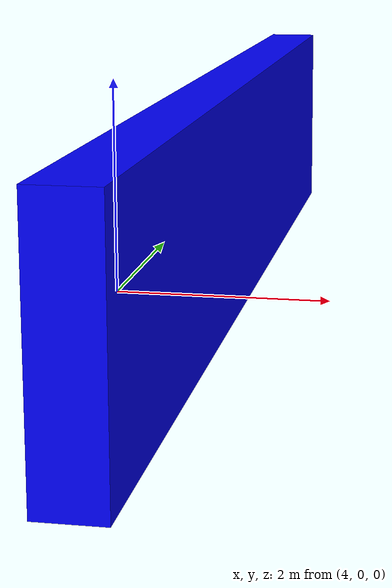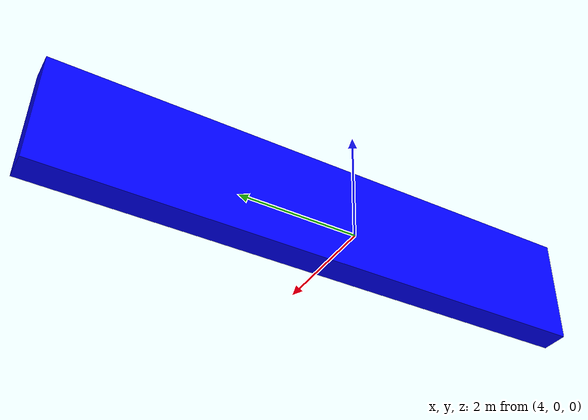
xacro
<?xml version="1.0"?>
<robot xmlns:xacro="http://www.ros.org/wiki/xacro">

  <link name="wall">
    <visual>
      <origin xyz="5 0 1" rpy="0 0 0"/>
      <geometry>
        <box size="0.5 10.0 2.0"/>
      </geometry>
      <material name="blue">
        <color rgba="0.0 0.0 1.0 1"/>
      </material>
    </visual>

    <collision>
      <origin xyz="5 0 1" rpy="0 0 0"/>
      <geometry>
        <box size="0.5 10.0 2.0"/>
      </geometry>
    </collision>

    <inertial>
      <mass value="1.0"/>
      <inertia ixx="1.0" iyy="1.0" izz="1.0"
               ixy="0.0" ixz="0.0" iyz="0.0"/>
    </inertial>
  </link>

  <!-- Tell Gazebo to treat it as static and color it -->
  <gazebo reference="wall">
    <static>true</static>
    <material>Gazebo/Blue</material>
  </gazebo>

</robot>
